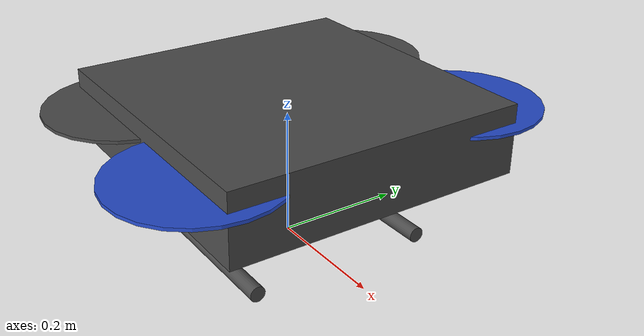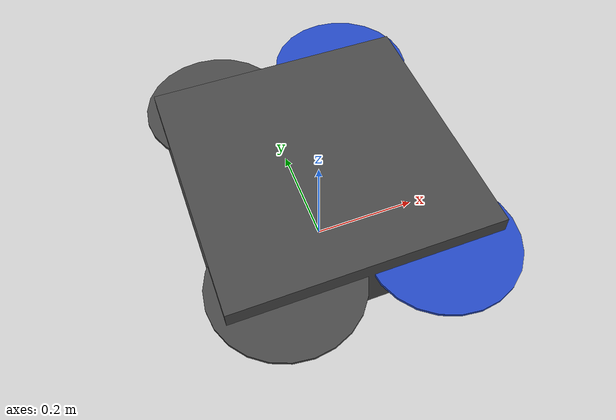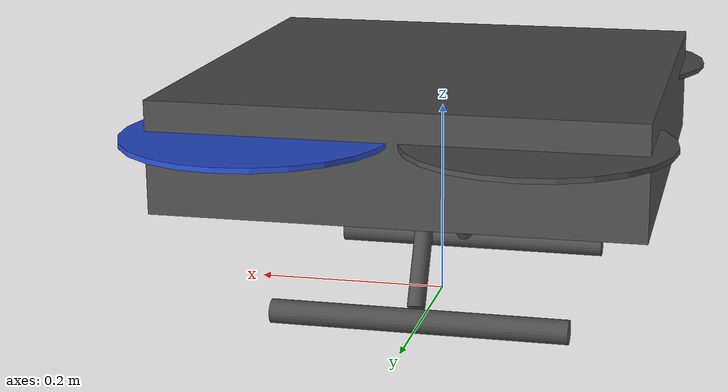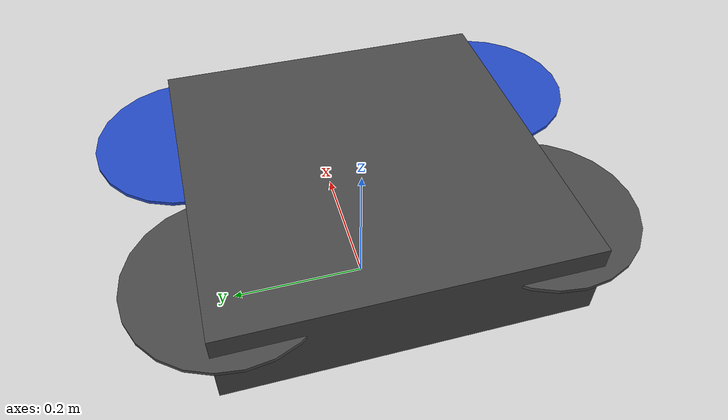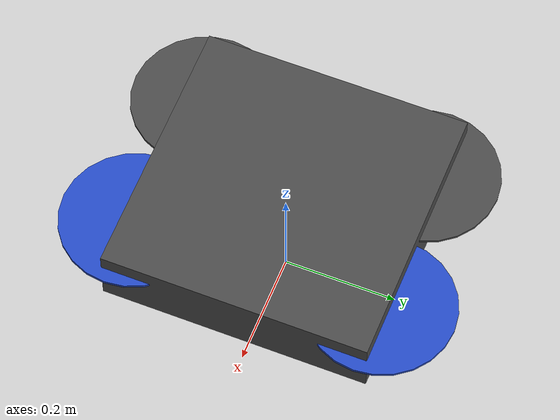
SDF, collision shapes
<?xml version='1.0'?>
<sdf version='1.6'>
  <model name='iris_with_standoffs_new'>
    <pose>0 0 0.19 0 0 0</pose>
    <link name='base_link'>
      <inertial>
        <pose>0 0 0 0 0 0</pose>
        <mass>1.5</mass>
        <inertia>
          <ixx>0.0347563</ixx>
          <ixy>0</ixy>
          <ixz>0</ixz>
          <iyy>0.0458929</iyy>
          <iyz>0</iyz>
          <izz>0.0977</izz>
        </inertia>
      </inertial>
      <collision name='base_link_collision'>
        <pose>0 0 0 0 -0 0</pose>
        <geometry>
          <box>
            <size>0.47 0.47 0.11</size>
          </box>
        </geometry>
        <surface>
          <contact>
            <ode>
              <max_vel>0</max_vel>
              <min_depth>0.001</min_depth>
            </ode>
          </contact>
          <friction>
            <ode>
            </ode>
          </friction>
        </surface>
      </collision>
      <visual name='base_link_visual'>
        <geometry>
          <mesh>
            <uri>model://iris_with_standoffs_new/meshes/iris.dae</uri>
          </mesh>
        </geometry>
        <material>
          <script>
            <name>Gazebo/DarkGrey</name>
          </script>
        </material>
      </visual>
      <gravity>1</gravity>
      <self_collide>0</self_collide>
    </link>

    <link name="left_leg">
      <inertial>
        <!-- place holder -->
        <pose>0 -0.14314 -0.177252 0 0 0</pose>
        <mass>0.1</mass>
        <inertia>
          <ixx>0.001</ixx>
          <ixy>0</ixy>
          <ixz>0</ixz>
          <iyy>0.001</iyy>
          <iyz>0</iyz>
          <izz>0.001</izz>
        </inertia>
      </inertial>
      <collision name='collision'>
        <pose>-0.005 -0.14314 -0.177252 0 1.56893 0</pose>
        <geometry>
          <cylinder>
            <radius>0.012209</radius>
            <length>0.3</length>
          </cylinder>
        </geometry>
        <surface>
          <friction>
            <ode>
              <mu>1</mu>
              <mu2>1</mu2>
            </ode>
          </friction>
          <contact>
            <ode>
              <kp>1e+8</kp>
              <kd>1</kd>
              <max_vel>0.01</max_vel>
              <min_depth>0.001</min_depth>
            </ode>
          </contact>
        </surface>
      </collision>
      <collision name='collision_bar'>
        <pose>0.00052 -0.08503 -0.091187 -0.501318 0 0</pose>
        <geometry>
          <cylinder>
            <radius>0.00914984</radius>
            <length>0.176893</length>
          </cylinder>
        </geometry>
        <surface>
          <friction>
            <ode>
              <mu>1</mu>
              <mu2>1</mu2>
            </ode>
          </friction>
          <contact>
            <ode>
              <kp>1e+8</kp>
              <kd>1</kd>
              <max_vel>0.01</max_vel>
              <min_depth>0.001</min_depth>
            </ode>
          </contact>
        </surface>
      </collision>
      <visual name='base_link_left_leg'>
        <pose>0 0 0 0 0 0</pose>
        <geometry>
          <mesh>
            <scale>1 1 1</scale>
            <uri>model://iris_with_standoffs_new/meshes/leg2.dae</uri>
          </mesh>
        </geometry>
        <material>
          <script>
            <name>Gazebo/DarkGrey</name>
            <uri>file://media/materials/scripts/gazebo.material</uri>
          </script>
        </material>
      </visual>
    </link>
    <joint name='left_leg_joint' type='fixed'>
      <child>left_leg</child>
      <parent>base_link</parent>
      <pose>0.00026 -0.040515 -0.048 0 0 0</pose>
      <axis>
        <xyz>-1 0 0</xyz>
        <limit>
          <lower>0</lower>
          <upper>1</upper>
          <effort>100</effort>
          <velocity>-1</velocity>
          <stiffness>100000000</stiffness>
          <dissipation>1</dissipation>
        </limit>
        <dynamics>
          <damping>0.1</damping>
        </dynamics>
        <use_parent_model_frame>1</use_parent_model_frame>
      </axis>
      <physics>
        <ode>
        </ode>
      </physics>
    </joint>

    <link name="right_leg">
      <pose>0 0 0 0 0 0</pose>
      <inertial>
        <!-- place holder -->
        <pose>0 0.14314 -0.177252 0 0 0</pose>
        <mass>0.1</mass>
        <inertia>
          <ixx>0.001</ixx>
          <ixy>0</ixy>
          <ixz>0</ixz>
          <iyy>0.001</iyy>
          <iyz>0</iyz>
          <izz>0.001</izz>
        </inertia>
      </inertial>
      <collision name='collision'>
        <pose>-0.005 0.14314 -0.177252 0 1.56893 0</pose>
        <geometry>
          <cylinder>
            <radius>0.012209</radius>
            <length>0.3</length>
          </cylinder>
        </geometry>
        <surface>
          <friction>
            <ode>
              <mu>1</mu>
              <mu2>1</mu2>
            </ode>
          </friction>
          <contact>
            <ode>
              <kp>1e+8</kp>
              <kd>1</kd>
              <max_vel>0.01</max_vel>
              <min_depth>0.001</min_depth>
            </ode>
          </contact>
        </surface>
      </collision>
      <collision name='collision_bar'>
        <pose>0.00052 0.08503 -0.091187 0.501318 0 0</pose>
        <geometry>
          <cylinder>
            <radius>0.00914984</radius>
            <length>0.176893</length>
          </cylinder>
        </geometry>
        <surface>
          <friction>
            <ode>
              <mu>1</mu>
              <mu2>1</mu2>
            </ode>
          </friction>
          <contact>
            <ode>
              <kp>1e+8</kp>
              <kd>1</kd>
              <max_vel>0.01</max_vel>
              <min_depth>0.001</min_depth>
            </ode>
          </contact>
        </surface>
      </collision>
      <visual name='base_link_right_leg'>
        <pose>0 0 0 0 0 0</pose>
        <geometry>
          <mesh>
            <scale>1 1 1</scale>
            <uri>model://iris_with_standoffs_new/meshes/leg1.dae</uri>
          </mesh>
        </geometry>
        <material>
          <script>
            <name>Gazebo/DarkGrey</name>
            <uri>file://media/materials/scripts/gazebo.material</uri>
          </script>
        </material>
      </visual>
    </link>
    <joint name='right_leg_joint' type='fixed'>
      <child>right_leg</child>
      <parent>base_link</parent>
      <pose>0.00026 0.040515 -0.048 0 0 0</pose>
      <axis>
        <xyz>1 0 0</xyz>
        <limit>
          <lower>0</lower>
          <upper>1</upper>
          <effort>100</effort>
          <velocity>-1</velocity>
          <stiffness>100000000</stiffness>
          <dissipation>1</dissipation>
        </limit>
        <dynamics>
          <damping>0.1</damping>
        </dynamics>
        <use_parent_model_frame>1</use_parent_model_frame>
      </axis>
      <physics>
        <ode>
        </ode>
      </physics>
    </joint>

    <link name='/imu_link'>
      <pose frame=''>0 0 0 0 -0 0</pose>
      <inertial>
        <pose frame=''>0 0 0 0 -0 0</pose>
        <mass>0.015</mass>
        <inertia>
          <ixx>1e-05</ixx>
          <ixy>0</ixy>
          <ixz>0</ixz>
          <iyy>1e-05</iyy>
          <iyz>0</iyz>
          <izz>1e-05</izz>
        </inertia>
      </inertial>
    </link>
    <joint name='/imu_joint' type='revolute'>
      <child>/imu_link</child>
      <parent>base_link</parent>
      <axis>
        <xyz>1 0 0</xyz>
        <limit>
          <lower>0</lower>
          <upper>0</upper>
          <effort>0</effort>
          <velocity>0</velocity>
        </limit>
        <dynamics>
          <spring_reference>0</spring_reference>
          <spring_stiffness>0</spring_stiffness>
        </dynamics>
        <use_parent_model_frame>1</use_parent_model_frame>
      </axis>
    </joint>

    <link name='rotor_0'>
      <pose frame=''>0.13 -0.22 0.023 0 -0 0</pose>
      <inertial>
        <pose frame=''>0 0 0 0 -0 0</pose>
        <mass>0.005</mass>
        <inertia>
          <ixx>9.75e-07</ixx>
          <ixy>0</ixy>
          <ixz>0</ixz>
          <iyy>0.000273104</iyy>
          <iyz>0</iyz>
          <izz>0.000274004</izz>
        </inertia>
      </inertial>
      <collision name='rotor_0_collision'>
        <pose frame=''>0 0 0 0 -0 0</pose>
        <geometry>
          <cylinder>
            <length>0.005</length>
            <radius>0.128</radius>
          </cylinder>
        </geometry>
        <surface>
          <contact>
            <ode/>
          </contact>
          <friction>
            <ode/>
          </friction>
        </surface>
      </collision>
      <visual name='rotor_0_visual'>
        <pose frame=''>0 0 0 0 -0 0</pose>
        <geometry>
          <mesh>
            <scale>1 1 1</scale>
            <uri>model://iris_with_standoffs_new/meshes/iris_prop_ccw.dae</uri>
          </mesh>
        </geometry>
        <material>
          <script>
            <name>Gazebo/Blue</name>
            <uri>file://media/materials/scripts/gazebo.material</uri>
          </script>
        </material>
      </visual>
      <gravity>1</gravity>
      <velocity_decay/>
    </link>
    <joint name='rotor_0_joint' type='revolute'>
      <child>rotor_0</child>
      <parent>base_link</parent>
      <axis>
        <xyz>0 0 1</xyz>
        <limit>
          <lower>-1e+16</lower>
          <upper>1e+16</upper>
        </limit>
        <dynamics>
          <spring_reference>0</spring_reference>
          <spring_stiffness>0</spring_stiffness>
        </dynamics>
        <use_parent_model_frame>1</use_parent_model_frame>
      </axis>
    </joint>
    <link name='rotor_1'>
      <pose frame=''>-0.13 0.2 0.023 0 -0 0</pose>
      <inertial>
        <pose frame=''>0 0 0 0 -0 0</pose>
        <mass>0.005</mass>
        <inertia>
          <ixx>9.75e-07</ixx>
          <ixy>0</ixy>
          <ixz>0</ixz>
          <iyy>0.000273104</iyy>
          <iyz>0</iyz>
          <izz>0.000274004</izz>
        </inertia>
      </inertial>
      <collision name='rotor_1_collision'>
        <pose frame=''>0 0 0 0 -0 0</pose>
        <geometry>
          <cylinder>
            <length>0.005</length>
            <radius>0.128</radius>
          </cylinder>
        </geometry>
        <surface>
          <contact>
            <ode/>
          </contact>
          <friction>
            <ode/>
          </friction>
        </surface>
      </collision>
      <visual name='rotor_1_visual'>
        <pose frame=''>0 0 0 0 -0 0</pose>
        <geometry>
          <mesh>
            <scale>1 1 1</scale>
            <uri>model://iris_with_standoffs_new/meshes/iris_prop_ccw.dae</uri>
          </mesh>
        </geometry>
        <material>
          <script>
            <name>Gazebo/DarkGrey</name>
            <uri>file://media/materials/scripts/gazebo.material</uri>
          </script>
        </material>
      </visual>
      <gravity>1</gravity>
      <velocity_decay/>
    </link>
    <joint name='rotor_1_joint' type='revolute'>
      <child>rotor_1</child>
      <parent>base_link</parent>
      <axis>
        <xyz>0 0 1</xyz>
        <limit>
          <lower>-1e+16</lower>
          <upper>1e+16</upper>
        </limit>
        <dynamics>
          <spring_reference>0</spring_reference>
          <spring_stiffness>0</spring_stiffness>
        </dynamics>
        <use_parent_model_frame>1</use_parent_model_frame>
      </axis>
    </joint>
    <link name='rotor_2'>
      <pose frame=''>0.13 0.22 0.023 0 -0 0</pose>
      <inertial>
        <pose frame=''>0 0 0 0 -0 0</pose>
        <mass>0.005</mass>
        <inertia>
          <ixx>9.75e-07</ixx>
          <ixy>0</ixy>
          <ixz>0</ixz>
          <iyy>0.000273104</iyy>
          <iyz>0</iyz>
          <izz>0.000274004</izz>
        </inertia>
      </inertial>
      <collision name='rotor_2_collision'>
        <pose frame=''>0 0 0 0 -0 0</pose>
        <geometry>
          <cylinder>
            <length>0.005</length>
            <radius>0.128</radius>
          </cylinder>
        </geometry>
        <surface>
          <contact>
            <ode/>
          </contact>
          <friction>
            <ode/>
          </friction>
        </surface>
      </collision>
      <visual name='rotor_2_visual'>
        <pose frame=''>0 0 0 0 -0 0</pose>
        <geometry>
          <mesh>
            <scale>1 1 1</scale>
            <uri>model://iris_with_standoffs_new/meshes/iris_prop_cw.dae</uri>
          </mesh>
        </geometry>
        <material>
          <script>
            <name>Gazebo/Blue</name>
            <uri>file://media/materials/scripts/gazebo.material</uri>
          </script>
        </material>
      </visual>
      <gravity>1</gravity>
      <velocity_decay/>
    </link>
    <joint name='rotor_2_joint' type='revolute'>
      <child>rotor_2</child>
      <parent>base_link</parent>
      <axis>
        <xyz>0 0 1</xyz>
        <limit>
          <lower>-1e+16</lower>
          <upper>1e+16</upper>
        </limit>
        <dynamics>
          <spring_reference>0</spring_reference>
          <spring_stiffness>0</spring_stiffness>
        </dynamics>
        <use_parent_model_frame>1</use_parent_model_frame>
      </axis>
    </joint>
    <link name='rotor_3'>
      <pose frame=''>-0.13 -0.2 0.023 0 -0 0</pose>
      <inertial>
        <pose frame=''>0 0 0 0 -0 0</pose>
        <mass>0.005</mass>
        <inertia>
          <ixx>9.75e-07</ixx>
          <ixy>0</ixy>
          <ixz>0</ixz>
          <iyy>0.000273104</iyy>
          <iyz>0</iyz>
          <izz>0.000274004</izz>
        </inertia>
      </inertial>
      <collision name='rotor_3_collision'>
        <pose frame=''>0 0 0 0 -0 0</pose>
        <geometry>
          <cylinder>
            <length>0.005</length>
            <radius>0.128</radius>
          </cylinder>
        </geometry>
        <surface>
          <contact>
            <ode/>
          </contact>
          <friction>
            <ode/>
          </friction>
        </surface>
      </collision>
      <visual name='rotor_3_visual'>
        <pose frame=''>0 0 0 0 -0 0</pose>
        <geometry>
          <mesh>
            <scale>1 1 1</scale>
            <uri>model://iris_with_standoffs_new/meshes/iris_prop_cw.dae</uri>
          </mesh>
        </geometry>
        <material>
          <script>
            <name>Gazebo/DarkGrey</name>
            <uri>file://media/materials/scripts/gazebo.material</uri>
          </script>
        </material>
      </visual>
      <gravity>1</gravity>
      <velocity_decay/>
    </link>
    <joint name='rotor_3_joint' type='revolute'>
      <child>rotor_3</child>
      <parent>base_link</parent>
      <axis>
        <xyz>0 0 1</xyz>
        <limit>
          <lower>-1e+16</lower>
          <upper>1e+16</upper>
        </limit>
        <dynamics>
          <spring_reference>0</spring_reference>
          <spring_stiffness>0</spring_stiffness>
        </dynamics>
        <use_parent_model_frame>1</use_parent_model_frame>
      </axis>
    </joint>
    <plugin name='rosbag' filename='libgazebo_multirotor_base_plugin.so'>
      <robotNamespace/>
      <linkName>base_link</linkName>
      <rotorVelocitySlowdownSim>10</rotorVelocitySlowdownSim>
    </plugin>
    <plugin name='front_right_motor_model' filename='libgazebo_motor_model.so'>
      <robotNamespace/>
      <jointName>rotor_0_joint</jointName>
      <linkName>rotor_0</linkName>
      <turningDirection>ccw</turningDirection>
      <timeConstantUp>0.0125</timeConstantUp>
      <timeConstantDown>0.025</timeConstantDown>
      <maxRotVelocity>1100</maxRotVelocity>
      <motorConstant>8.54858e-06</motorConstant>
      <momentConstant>0.06</momentConstant>
      <commandSubTopic>/gazebo/command/motor_speed</commandSubTopic>
      <motorNumber>0</motorNumber>
      <rotorDragCoefficient>0.000806428</rotorDragCoefficient>
      <rollingMomentCoefficient>1e-06</rollingMomentCoefficient>
      <motorSpeedPubTopic>/motor_speed/0</motorSpeedPubTopic>
      <rotorVelocitySlowdownSim>10</rotorVelocitySlowdownSim>
    </plugin>
    <plugin name='back_left_motor_model' filename='libgazebo_motor_model.so'>
      <robotNamespace/>
      <jointName>rotor_1_joint</jointName>
      <linkName>rotor_1</linkName>
      <turningDirection>ccw</turningDirection>
      <timeConstantUp>0.0125</timeConstantUp>
      <timeConstantDown>0.025</timeConstantDown>
      <maxRotVelocity>1100</maxRotVelocity>
      <motorConstant>8.54858e-06</motorConstant>
      <momentConstant>0.06</momentConstant>
      <commandSubTopic>/gazebo/command/motor_speed</commandSubTopic>
      <motorNumber>1</motorNumber>
      <rotorDragCoefficient>0.000806428</rotorDragCoefficient>
      <rollingMomentCoefficient>1e-06</rollingMomentCoefficient>
      <motorSpeedPubTopic>/motor_speed/1</motorSpeedPubTopic>
      <rotorVelocitySlowdownSim>10</rotorVelocitySlowdownSim>
    </plugin>
    <plugin name='front_left_motor_model' filename='libgazebo_motor_model.so'>
      <robotNamespace/>
      <jointName>rotor_2_joint</jointName>
      <linkName>rotor_2</linkName>
      <turningDirection>cw</turningDirection>
      <timeConstantUp>0.0125</timeConstantUp>
      <timeConstantDown>0.025</timeConstantDown>
      <maxRotVelocity>1100</maxRotVelocity>
      <motorConstant>8.54858e-06</motorConstant>
      <momentConstant>0.06</momentConstant>
      <commandSubTopic>/gazebo/command/motor_speed</commandSubTopic>
      <motorNumber>2</motorNumber>
      <rotorDragCoefficient>0.000806428</rotorDragCoefficient>
      <rollingMomentCoefficient>1e-06</rollingMomentCoefficient>
      <motorSpeedPubTopic>/motor_speed/2</motorSpeedPubTopic>
      <rotorVelocitySlowdownSim>10</rotorVelocitySlowdownSim>
    </plugin>
    <plugin name='back_right_motor_model' filename='libgazebo_motor_model.so'>
      <robotNamespace/>
      <jointName>rotor_3_joint</jointName>
      <linkName>rotor_3</linkName>
      <turningDirection>cw</turningDirection>
      <timeConstantUp>0.0125</timeConstantUp>
      <timeConstantDown>0.025</timeConstantDown>
      <maxRotVelocity>1100</maxRotVelocity>
      <motorConstant>8.54858e-06</motorConstant>
      <momentConstant>0.06</momentConstant>
      <commandSubTopic>/gazebo/command/motor_speed</commandSubTopic>
      <motorNumber>3</motorNumber>
      <rotorDragCoefficient>0.000806428</rotorDragCoefficient>
      <rollingMomentCoefficient>1e-06</rollingMomentCoefficient>
      <motorSpeedPubTopic>/motor_speed/3</motorSpeedPubTopic>
      <rotorVelocitySlowdownSim>10</rotorVelocitySlowdownSim>
    </plugin>

    <plugin name='gps_plugin' filename='libgazebo_gps_plugin.so'>
      <robotNamespace/>
      <gpsNoise>1</gpsNoise>
    </plugin>

    <plugin name='mavlink_interface' filename='libgazebo_mavlink_interface.so'>
      <robotNamespace/>
      <imuSubTopic>/imu</imuSubTopic>
      <gpsSubTopic>/gps</gpsSubTopic>
      <mavlink_addr>INADDR_ANY</mavlink_addr>
      <mavlink_udp_port>14560</mavlink_udp_port>
      <serialEnabled>0</serialEnabled>
      <serialDevice>/dev/ttyACM0</serialDevice>
      <baudRate>921600</baudRate>
      <qgc_addr>INADDR_ANY</qgc_addr>
      <qgc_udp_port>14550</qgc_udp_port>
      <hil_mode>0</hil_mode>
      <hil_state_level>0</hil_state_level>
      <vehicle_is_tailsitter>0</vehicle_is_tailsitter>
      <motorSpeedCommandPubTopic>/gazebo/command/motor_speed</motorSpeedCommandPubTopic>
      <control_channels>
        <channel name='rotor1'>
          <input_index>0</input_index>
          <input_offset>0</input_offset>
          <input_scaling>1000</input_scaling>
          <zero_position_disarmed>0</zero_position_disarmed>
          <zero_position_armed>100</zero_position_armed>
          <joint_control_type>velocity</joint_control_type>
        </channel>
        <channel name='rotor2'>
          <input_index>1</input_index>
          <input_offset>0</input_offset>
          <input_scaling>1000</input_scaling>
          <zero_position_disarmed>0</zero_position_disarmed>
          <zero_position_armed>100</zero_position_armed>
          <joint_control_type>velocity</joint_control_type>
        </channel>
        <channel name='rotor3'>
          <input_index>2</input_index>
          <input_offset>0</input_offset>
          <input_scaling>1000</input_scaling>
          <zero_position_disarmed>0</zero_position_disarmed>
          <zero_position_armed>100</zero_position_armed>
          <joint_control_type>velocity</joint_control_type>
        </channel>
        <channel name='rotor4'>
          <input_index>3</input_index>
          <input_offset>0</input_offset>
          <input_scaling>1000</input_scaling>
          <zero_position_disarmed>0</zero_position_disarmed>
          <zero_position_armed>100</zero_position_armed>
          <joint_control_type>velocity</joint_control_type>
        </channel>
        <channel name='rotor5'>
          <input_index>4</input_index>
          <input_offset>1</input_offset>
          <input_scaling>324.6</input_scaling>
          <zero_position_disarmed>0</zero_position_disarmed>
          <zero_position_armed>0</zero_position_armed>
          <joint_control_type>velocity</joint_control_type>
          <joint_control_pid>
            <p>0.1</p>
            <i>0</i>
            <d>0</d>
            <iMax>0.0</iMax>
            <iMin>0.0</iMin>
            <cmdMax>2</cmdMax>
            <cmdMin>-2</cmdMin>
          </joint_control_pid>
          <joint_name>zephyr_delta_wing::propeller_joint</joint_name>
        </channel>
        <channel name='rotor6'>
          <input_index>5</input_index>
          <input_offset>0</input_offset>
          <input_scaling>0.524</input_scaling>
          <zero_position_disarmed>0</zero_position_disarmed>
          <zero_position_armed>0</zero_position_armed>
          <joint_control_type>position</joint_control_type>
          <joint_name>zephyr_delta_wing::flap_left_joint</joint_name>
          <joint_control_pid>
            <p>10.0</p>
            <i>0</i>
            <d>0</d>
            <iMax>0</iMax>
            <iMin>0</iMin>
            <cmdMax>20</cmdMax>
            <cmdMin>-20</cmdMin>
          </joint_control_pid>
        </channel>
        <channel name='rotor7'>
          <input_index>6</input_index>
          <input_offset>0</input_offset>
          <input_scaling>0.524</input_scaling>
          <zero_position_disarmed>0</zero_position_disarmed>
          <zero_position_armed>0</zero_position_armed>
          <joint_control_type>position</joint_control_type>
          <joint_name>zephyr_delta_wing::flap_right_joint</joint_name>
          <joint_control_pid>
            <p>10.0</p>
            <i>0</i>
            <d>0</d>
            <iMax>0</iMax>
            <iMin>0</iMin>
            <cmdMax>20</cmdMax>
            <cmdMin>-20</cmdMin>
          </joint_control_pid>
        </channel>
        <channel name='rotor8'>
          <input_index>7</input_index>
          <input_offset>0</input_offset>
          <input_scaling>0.524</input_scaling>
          <zero_position_disarmed>0</zero_position_disarmed>
          <zero_position_armed>0</zero_position_armed>
          <joint_control_type>position</joint_control_type>
        </channel>
      </control_channels>
    </plugin>
    <static>0</static>
    <plugin name='rotors_gazebo_imu_plugin' filename='libgazebo_imu_plugin.so'>
      <robotNamespace/>
      <linkName>/imu_link</linkName>
      <imuTopic>/imu</imuTopic>
      <gyroscopeNoiseDensity>0.0003394</gyroscopeNoiseDensity>
      <gyroscopeRandomWalk>3.8785e-05</gyroscopeRandomWalk>
      <gyroscopeBiasCorrelationTime>1000.0</gyroscopeBiasCorrelationTime>
      <gyroscopeTurnOnBiasSigma>0.0087</gyroscopeTurnOnBiasSigma>
      <accelerometerNoiseDensity>0.004</accelerometerNoiseDensity>
      <accelerometerRandomWalk>0.006</accelerometerRandomWalk>
      <accelerometerBiasCorrelationTime>300.0</accelerometerBiasCorrelationTime>
      <accelerometerTurnOnBiasSigma>0.196</accelerometerTurnOnBiasSigma>
    </plugin>
  </model>
</sdf>
